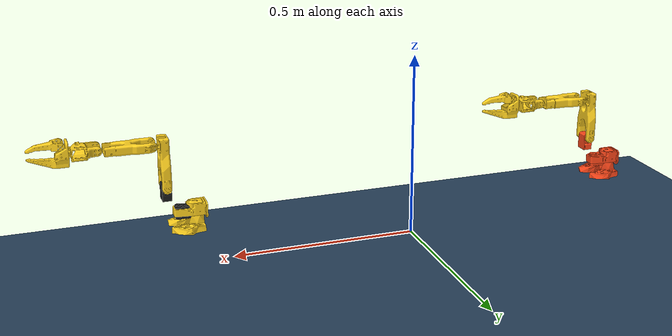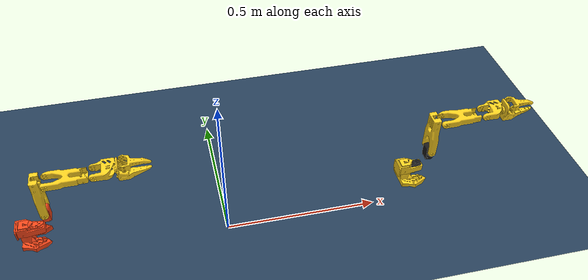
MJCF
<mujoco model="dual_so101_manual">
  <compiler angle="radian" />

  <option gravity="0 0 -9.81" timestep="0.002" />

  <visual>
    <headlight diffuse="0.6 0.6 0.6" ambient="0.3 0.3 0.3" specular="0 0 0" />
    <rgba haze="0.15 0.25 0.35 1" />
    <global azimuth="120" elevation="-20" />
  </visual>

  <default>
    <default class="robot">
      <default class="motor">
        <joint />
        <motor />
      </default>
      <default class="visual">
        <geom material="visualgeom" contype="0" conaffinity="0" group="2" />
      </default>
      <default class="collision">
        <geom material="collision_material" condim="3" contype="0" conaffinity="1" priority="1" group="1" solref="0.005 1" solimp="0.99 0.999 1e-05" friction="1 0.01 0.01" />
      </default>
    </default>
  </default>

  <asset>
    <texture type="skybox" builtin="gradient" rgb1="0.3 0.5 0.7" rgb2="0 0 0" width="512" height="3072" />
    <texture name="grid" type="2d" builtin="checker" mark="edge" rgb1="0.2 0.3 0.4" rgb2="0.1 0.2 0.3" markrgb="0.8 0.8 0.8" width="300" height="300" />
    <material name="grid" texture="grid" texrepeat="8 8" reflectance="0.2" />

    <!-- Robot materials -->
    <material name="3d_printed" rgba="1.0 0.82 0.12 1.0" />
    <material name="sts3215" rgba="0.1 0.1 0.1 1.0" />
    <material name="default_material" rgba="0.7 0.7 0.7 1" />
    <material name="collision_material" rgba="1.0 0.28 0.1 0.9" />
    <material name="visualgeom" rgba="0.5 0.9 0.2 1" />

    <!-- Robot meshes -->
    <mesh name="base_motor_holder_so101_v1.stl" file="SO101/assets/base_motor_holder_so101_v1.stl" />
    <mesh name="base_so101_v2.stl" file="SO101/assets/base_so101_v2.stl" />
    <mesh name="sts3215_03a_v1.stl" file="SO101/assets/sts3215_03a_v1.stl" />
    <mesh name="waveshare_mounting_plate_so101_v2.stl" file="SO101/assets/waveshare_mounting_plate_so101_v2.stl" />
    <mesh name="motor_holder_so101_base_v1.stl" file="SO101/assets/motor_holder_so101_base_v1.stl" />
    <mesh name="rotation_pitch_so101_v1.stl" file="SO101/assets/rotation_pitch_so101_v1.stl" />
    <mesh name="upper_arm_so101_v1.stl" file="SO101/assets/upper_arm_so101_v1.stl" />
    <mesh name="under_arm_so101_v1.stl" file="SO101/assets/under_arm_so101_v1.stl" />
    <mesh name="motor_holder_so101_wrist_v1.stl" file="SO101/assets/motor_holder_so101_wrist_v1.stl" />
    <mesh name="sts3215_03a_no_horn_v1.stl" file="SO101/assets/sts3215_03a_no_horn_v1.stl" />
    <mesh name="wrist_roll_pitch_so101_v2.stl" file="SO101/assets/wrist_roll_pitch_so101_v2.stl" />
    <mesh name="wrist_roll_follower_so101_v1.stl" file="SO101/assets/wrist_roll_follower_so101_v1.stl" />
    <mesh name="moving_jaw_so101_v1.stl" file="SO101/assets/moving_jaw_so101_v1.stl" />
  </asset>

  <worldbody>
    <!-- Ground plane -->
    <geom name="floor" pos="0 0 0" size="5 5 0.1" type="plane" material="grid" />

    <!-- Lighting -->
    <light name="top" pos="0 0 3" dir="0 0 -1" diffuse="0.7 0.7 0.7" />
    <light name="side1" pos="3 3 2" dir="-1 -1 -1" diffuse="0.4 0.4 0.4" />
    <light name="side2" pos="-3 -3 2" dir="1 1 -1" diffuse="0.4 0.4 0.4" />

    <!-- Robot 1 - Left position -->
    <body name="robot1_base_link" pos="-0.6 0 0.102400" quat="1 0 0 0" childclass="robot">
      <geom name="robot1_base_collision_0" pos="-0.00636471 -9.94414e-05 -0.0024" quat="0.49999816339744785 0.4999999999966273 0.5000018366025512 0.4999999999966273" type="mesh" mesh="base_motor_holder_so101_v1.stl" class="collision" />
      <geom name="robot1_base_collision_1" pos="-0.00636471 -8.97657e-09 -0.0024" quat="0.4999981633974483 0.49999999999662686 0.5000018366025516 0.49999999999662686" type="mesh" mesh="base_so101_v2.stl" class="collision" />
      <geom name="robot1_base_collision_2" pos="0.0263353 -8.97657e-09 0.0437" quat="1.0 -4.10574e-16 3.922564999999744e-18 6.245e-16" type="mesh" mesh="sts3215_03a_v1.stl" class="collision" />
      <geom name="robot1_base_collision_3" pos="-0.0309827 -0.000199441 0.0474" quat="0.4999981633974449 0.49999999999663025 0.5000018366025482 0.49999999999663025" type="mesh" mesh="waveshare_mounting_plate_so101_v2.stl" class="collision" />
      <geom name="robot1_base_visual_0" pos="-0.00636471 -9.94414e-05 -0.0024" quat="0.49999816339744785 0.4999999999966273 0.5000018366025512 0.4999999999966273" material="3d_printed" type="mesh" mesh="base_motor_holder_so101_v1.stl" class="visual" />
      <geom name="robot1_base_visual_1" pos="-0.00636471 -8.97657e-09 -0.0024" quat="0.4999981633974483 0.49999999999662686 0.5000018366025516 0.49999999999662686" material="3d_printed" type="mesh" mesh="base_so101_v2.stl" class="visual" />
      <geom name="robot1_base_visual_2" pos="0.0263353 -8.97657e-09 0.0437" quat="1.0 -4.10574e-16 3.922564999999744e-18 6.245e-16" material="sts3215" type="mesh" mesh="sts3215_03a_v1.stl" class="visual" />
      <geom name="robot1_base_visual_3" pos="-0.0309827 -0.000199441 0.0474" quat="0.4999981633974449 0.49999999999663025 0.5000018366025482 0.49999999999663025" material="3d_printed" type="mesh" mesh="waveshare_mounting_plate_so101_v2.stl" class="visual" />

      <body name="robot1_shoulder_link" pos="0.0388353 -8.97657e-09 0.0624" quat="1.760363785199545e-12 1.326794896676365e-06 -0.9999999999982396 -1.326794896676365e-06">
        <joint name="robot1_shoulder_pan" type="hinge" ref="0.0" class="motor" range="-1.91986 1.91986" axis="0 0 1" />
        <inertial pos="-0.0307604 -1.66727e-05 -0.0252713" quat="1.0 0.0 0.0 0.0" mass="0.100006" diaginertia="8.3759e-05 8.10403e-05 2.39783e-05" />
        <geom name="robot1_shoulder_collision_0" pos="-0.0303992 0.000422241 -0.0417" quat="0.4999981633974483 0.49999999999662686 0.49999999999662686 -0.5000018366025516" type="mesh" mesh="sts3215_03a_v1.stl" class="collision" />
        <geom name="robot1_shoulder_visual_0" pos="-0.0303992 0.000422241 -0.0417" quat="0.4999981633974483 0.49999999999662686 0.49999999999662686 -0.5000018366025516" material="sts3215" type="mesh" mesh="sts3215_03a_v1.stl" class="visual" />

        <body name="robot1_upper_arm_link" pos="-0.0303992 -0.0182778 -0.0542" quat="0.4999981633974483 -0.49999999999662686 -0.49999999999662686 -0.5000018366025516">
          <joint name="robot1_shoulder_lift" type="hinge" ref="0.0" class="motor" range="-1.74533 1.74533" axis="0 0 1" />
          <inertial pos="-0.0898471 -0.00838224 0.0184089" quat="1.0 0.0 0.0 0.0" mass="0.103" diaginertia="4.08002e-05 0.000147318 0.000142487" />
          <geom name="robot1_upper_arm_visual" pos="-0.065085 0.012 0.0182" quat="1.3267948966775328e-06 0.9999999999991198 -6.545549999994239e-31 -8.684602335947626e-37" material="3d_printed" type="mesh" mesh="upper_arm_so101_v1.stl" class="visual" />

          <body name="robot1_lower_arm_link" pos="-0.11257 -0.028 1.73763e-16" quat="0.7071054825112363 -4.3766725580708164e-16 1.8055643788175648e-16 0.7071080798594735">
            <joint name="robot1_elbow_flex" type="hinge" ref="0.0" class="motor" range="-1.69 1.69" axis="0 0 1" />
            <inertial pos="-0.0980701 0.00324376 0.0182831" quat="1.0 0.0 0.0 0.0" mass="0.104" diaginertia="2.87438e-05 0.000159844 0.00014529" />
            <geom name="robot1_lower_arm_visual" pos="-0.0648499 -0.032 0.0182" quat="1.3267948966775328e-06 0.9999999999991198 3.336009999997064e-31 4.426201043265217e-37" material="3d_printed" type="mesh" mesh="under_arm_so101_v1.stl" class="visual" />

            <body name="robot1_wrist_link" pos="-0.1349 0.0052 3.62355e-17" quat="0.7071054825112363 1.7295535595292469e-15 -1.116241234178666e-15 -0.7071080798594735">
              <joint name="robot1_wrist_flex" type="hinge" ref="0.0" class="motor" range="-1.65806 1.65806" axis="0 0 1" />
              <inertial pos="-0.000103312 -0.0386143 0.0281156" quat="1.0 0.0 0.0 0.0" mass="0.079" diaginertia="3.68263e-05 2.5391e-05 2.1e-05" />
              <geom name="robot1_wrist_visual" pos="0 -0.028 0.0181" quat="0.4999981633974483 -0.49999999999662686 -0.49999999999662686 -0.5000018366025516" material="3d_printed" type="mesh" mesh="wrist_roll_pitch_so101_v2.stl" class="visual" />

              <body name="robot1_gripper_link" pos="5.55112e-17 -0.0611 0.0181" quat="0.01721007249293119 -0.017208133464804664 0.7068986593349474 0.7068960170901372">
                <joint name="robot1_wrist_roll" type="hinge" ref="0.0" class="motor" range="-2.74385 2.84121" axis="0 0 1" />
                <inertial pos="0.000213627 0.000245138 -0.025187" quat="1.0 0.0 0.0 0.0" mass="0.087" diaginertia="2.75087e-05 4.33657e-05 3.45059e-05" />
                <geom name="robot1_gripper_follower_visual" pos="8.32667e-17 -0.000218214 0.000949706" quat="1.3267948966775328e-06 -0.9999999999991198 -3.6825988434222926e-23 -2.775559999997557e-17" material="3d_printed" type="mesh" mesh="wrist_roll_follower_so101_v1.stl" class="visual" />

                <body name="robot1_gripper_jaw_link" pos="0.0202 0.0188 -0.0234" quat="0.7071054825112361 0.7071080798594733 -1.8536205040112397e-08 1.8536272126587696e-08">
                  <joint name="robot1_gripper" type="hinge" ref="0.0" class="motor" range="-0.174533 1.74533" axis="0 0 1" />
                  <inertial pos="-0.00157495 -0.0300244 0.0192755" quat="1.0 0.0 0.0 0.0" mass="0.012" diaginertia="6.61427e-06 1.89032e-06 5.28738e-06" />
                  <geom name="robot1_gripper_jaw_visual" pos="-5.55112e-17 -5.55112e-17 0.0189" quat="1.0 4.765725e-17 3.469445e-18 6.203849998346558e-25" material="3d_printed" type="mesh" mesh="moving_jaw_so101_v1.stl" class="visual" />
                </body>
              </body>
            </body>
          </body>
        </body>
      </body>
    </body>

    <!-- Robot 2 - Right position -->
    <body name="robot2_base_link" pos="0.6 0 0.102400" quat="1 0 0 0" childclass="robot">
      <geom name="robot2_base_visual_0" pos="-0.00636471 -9.94414e-05 -0.0024" quat="0.49999816339744785 0.4999999999966273 0.5000018366025512 0.4999999999966273" material="3d_printed" type="mesh" mesh="base_motor_holder_so101_v1.stl" class="visual" />
      <geom name="robot2_base_visual_1" pos="-0.00636471 -8.97657e-09 -0.0024" quat="0.4999981633974483 0.49999999999662686 0.5000018366025516 0.49999999999662686" material="3d_printed" type="mesh" mesh="base_so101_v2.stl" class="visual" />
      <geom name="robot2_base_visual_2" pos="0.0263353 -8.97657e-09 0.0437" quat="1.0 -4.10574e-16 3.922564999999744e-18 6.245e-16" material="sts3215" type="mesh" mesh="sts3215_03a_v1.stl" class="visual" />
      <geom name="robot2_base_visual_3" pos="-0.0309827 -0.000199441 0.0474" quat="0.4999981633974449 0.49999999999663025 0.5000018366025482 0.49999999999663025" material="3d_printed" type="mesh" mesh="waveshare_mounting_plate_so101_v2.stl" class="visual" />

      <body name="robot2_shoulder_link" pos="0.0388353 -8.97657e-09 0.0624" quat="1.760363785199545e-12 1.326794896676365e-06 -0.9999999999982396 -1.326794896676365e-06">
        <joint name="robot2_shoulder_pan" type="hinge" ref="0.0" class="motor" range="-1.91986 1.91986" axis="0 0 1" />
        <inertial pos="-0.0307604 -1.66727e-05 -0.0252713" quat="1.0 0.0 0.0 0.0" mass="0.100006" diaginertia="8.3759e-05 8.10403e-05 2.39783e-05" />
        <geom name="robot2_shoulder_visual_0" pos="-0.0303992 0.000422241 -0.0417" quat="0.4999981633974483 0.49999999999662686 0.49999999999662686 -0.5000018366025516" material="sts3215" type="mesh" mesh="sts3215_03a_v1.stl" class="visual" />

        <body name="robot2_upper_arm_link" pos="-0.0303992 -0.0182778 -0.0542" quat="0.4999981633974483 -0.49999999999662686 -0.49999999999662686 -0.5000018366025516">
          <joint name="robot2_shoulder_lift" type="hinge" ref="0.0" class="motor" range="-1.74533 1.74533" axis="0 0 1" />
          <inertial pos="-0.0898471 -0.00838224 0.0184089" quat="1.0 0.0 0.0 0.0" mass="0.103" diaginertia="4.08002e-05 0.000147318 0.000142487" />
          <geom name="robot2_upper_arm_visual" pos="-0.065085 0.012 0.0182" quat="1.3267948966775328e-06 0.9999999999991198 -6.545549999994239e-31 -8.684602335947626e-37" material="3d_printed" type="mesh" mesh="upper_arm_so101_v1.stl" class="visual" />

          <body name="robot2_lower_arm_link" pos="-0.11257 -0.028 1.73763e-16" quat="0.7071054825112363 -4.3766725580708164e-16 1.8055643788175648e-16 0.7071080798594735">
            <joint name="robot2_elbow_flex" type="hinge" ref="0.0" class="motor" range="-1.69 1.69" axis="0 0 1" />
            <inertial pos="-0.0980701 0.00324376 0.0182831" quat="1.0 0.0 0.0 0.0" mass="0.104" diaginertia="2.87438e-05 0.000159844 0.00014529" />
            <geom name="robot2_lower_arm_visual" pos="-0.0648499 -0.032 0.0182" quat="1.3267948966775328e-06 0.9999999999991198 3.336009999997064e-31 4.426201043265217e-37" material="3d_printed" type="mesh" mesh="under_arm_so101_v1.stl" class="visual" />

            <body name="robot2_wrist_link" pos="-0.1349 0.0052 3.62355e-17" quat="0.7071054825112363 1.7295535595292469e-15 -1.116241234178666e-15 -0.7071080798594735">
              <joint name="robot2_wrist_flex" type="hinge" ref="0.0" class="motor" range="-1.65806 1.65806" axis="0 0 1" />
              <inertial pos="-0.000103312 -0.0386143 0.0281156" quat="1.0 0.0 0.0 0.0" mass="0.079" diaginertia="3.68263e-05 2.5391e-05 2.1e-05" />
              <geom name="robot2_wrist_visual" pos="0 -0.028 0.0181" quat="0.4999981633974483 -0.49999999999662686 -0.49999999999662686 -0.5000018366025516" material="3d_printed" type="mesh" mesh="wrist_roll_pitch_so101_v2.stl" class="visual" />

              <body name="robot2_gripper_link" pos="5.55112e-17 -0.0611 0.0181" quat="0.01721007249293119 -0.017208133464804664 0.7068986593349474 0.7068960170901372">
                <joint name="robot2_wrist_roll" type="hinge" ref="0.0" class="motor" range="-2.74385 2.84121" axis="0 0 1" />
                <inertial pos="0.000213627 0.000245138 -0.025187" quat="1.0 0.0 0.0 0.0" mass="0.087" diaginertia="2.75087e-05 4.33657e-05 3.45059e-05" />
                <geom name="robot2_gripper_follower_visual" pos="8.32667e-17 -0.000218214 0.000949706" quat="1.3267948966775328e-06 -0.9999999999991198 -3.6825988434222926e-23 -2.775559999997557e-17" material="3d_printed" type="mesh" mesh="wrist_roll_follower_so101_v1.stl" class="visual" />

                <body name="robot2_gripper_jaw_link" pos="0.0202 0.0188 -0.0234" quat="0.7071054825112361 0.7071080798594733 -1.8536205040112397e-08 1.8536272126587696e-08">
                  <joint name="robot2_gripper" type="hinge" ref="0.0" class="motor" range="-0.174533 1.74533" axis="0 0 1" />
                  <inertial pos="-0.00157495 -0.0300244 0.0192755" quat="1.0 0.0 0.0 0.0" mass="0.012" diaginertia="6.61427e-06 1.89032e-06 5.28738e-06" />
                  <geom name="robot2_gripper_jaw_visual" pos="-5.55112e-17 -5.55112e-17 0.0189" quat="1.0 4.765725e-17 3.469445e-18 6.203849998346558e-25" material="3d_printed" type="mesh" mesh="moving_jaw_so101_v1.stl" class="visual" />
                </body>
              </body>
            </body>
          </body>
        </body>
      </body>
    </body>

    <!-- Cameras for viewing the scene -->
    <camera name="overview" mode="free" fovy="60" pos="0 -2.5 1.5" xyaxes="1 0 0 0 0.4 1" />
    <camera name="side_view" mode="free" fovy="60" pos="2.5 0 1.2" xyaxes="0 1 0 0 0 1" />
    <camera name="top_view" mode="free" fovy="60" pos="0 0 3" xyaxes="1 0 0 0 1 0" />
  </worldbody>

  <actuator>
    <!-- Robot 1 actuators -->
    <motor name="robot1_shoulder_pan_ctrl" joint="robot1_shoulder_pan" class="motor" />
    <motor name="robot1_shoulder_lift_ctrl" joint="robot1_shoulder_lift" class="motor" />
    <motor name="robot1_elbow_flex_ctrl" joint="robot1_elbow_flex" class="motor" />
    <motor name="robot1_wrist_flex_ctrl" joint="robot1_wrist_flex" class="motor" />
    <motor name="robot1_wrist_roll_ctrl" joint="robot1_wrist_roll" class="motor" />
    <motor name="robot1_gripper_ctrl" joint="robot1_gripper" class="motor" />

    <!-- Robot 2 actuators -->
    <motor name="robot2_shoulder_pan_ctrl" joint="robot2_shoulder_pan" class="motor" />
    <motor name="robot2_shoulder_lift_ctrl" joint="robot2_shoulder_lift" class="motor" />
    <motor name="robot2_elbow_flex_ctrl" joint="robot2_elbow_flex" class="motor" />
    <motor name="robot2_wrist_flex_ctrl" joint="robot2_wrist_flex" class="motor" />
    <motor name="robot2_wrist_roll_ctrl" joint="robot2_wrist_roll" class="motor" />
    <motor name="robot2_gripper_ctrl" joint="robot2_gripper" class="motor" />
  </actuator>
</mujoco>
